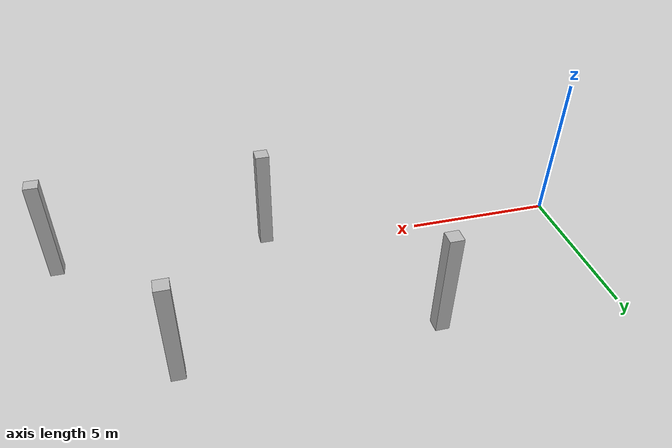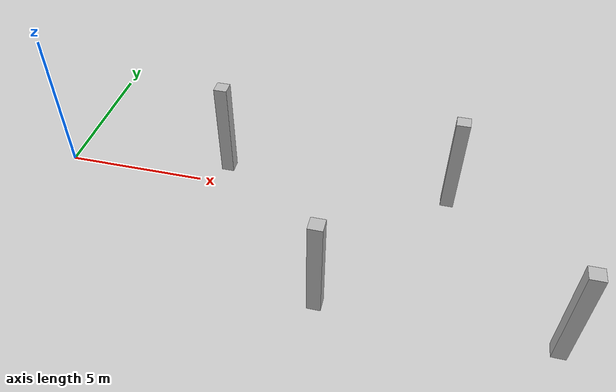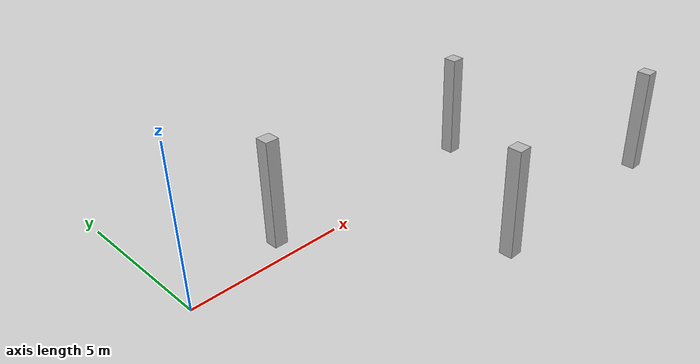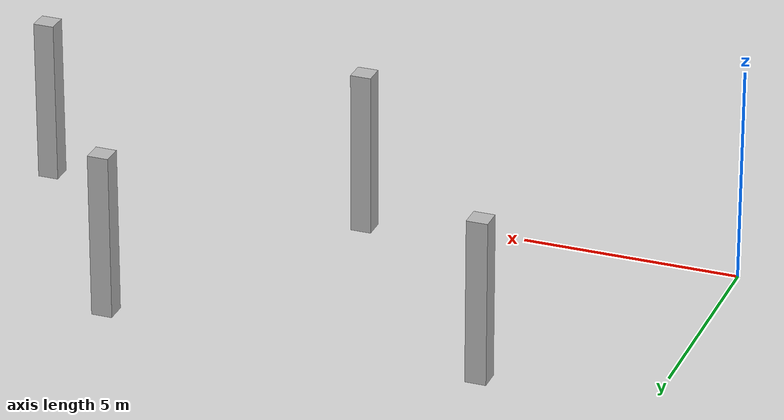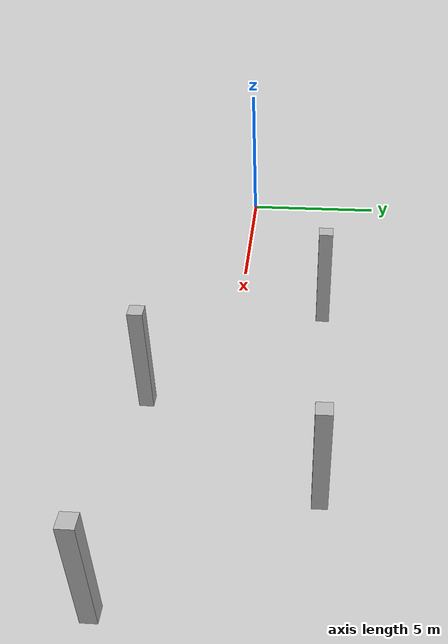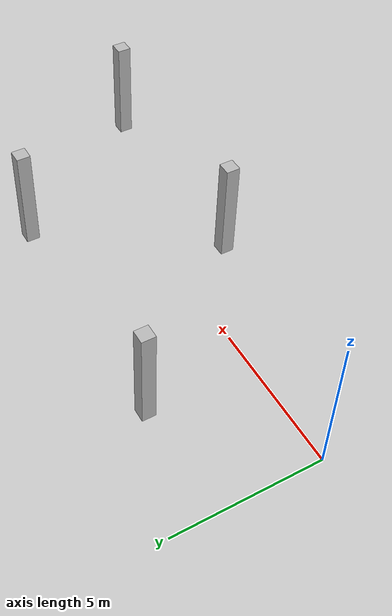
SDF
<?xml version="1.0" ?>
<sdf version="1.4">
  <world name="underwater">
    <include>
      <uri>model://sun</uri>
    </include>

    <wind>
      <linear_velocity>11 11 0</linear_velocity> <!-- Wind linear velocity -->
    </wind>
    <model name="model">
      <link name="link">
        <wind>true</wind>
      </link>
  </model>

    <model name='barco_obs2'>
        <static>true</static>
        <link name='base_link2'>
          <pose frame=''>5 3 0 0 0 0</pose>
          <inertial>
            <pose frame=''>0 0 0 0 0 0</pose>
            <mass>10</mass>
            <inertia>
              <ixx>3</ixx>
              <ixy>0</ixy>
              <ixz>0</ixz>
              <iyy>1</iyy>
              <iyz>0</iyz>
              <izz>3</izz>
            </inertia>
          </inertial>
          <collision name='base_link_collision2'>
            <pose frame=''>0 0 0 1.5708 0 1.5708</pose>
            <geometry>
              <box>
                <size>3 0.5 0.5</size>
              </box>
            </geometry>
          </collision>
          <visual name='base_link_visual2'>
            <pose frame=''>0 0 0 1.5708 1.5708 1.5708</pose>
            <geometry>
              <box>
                <size>4 0.5 0.5</size>
              </box>
            </geometry>
          </visual>
        </link>
    </model>

    <model name='barco_obs'>
        <static>true</static>
        <link name='base_link'>
          <pose frame=''>10 -3 0 0 0 0</pose>
          <inertial>
            <pose frame=''>0 0 0 0 0 0</pose>
            <mass>10</mass>
            <inertia>
              <ixx>3</ixx>
              <ixy>0</ixy>
              <ixz>0</ixz>
              <iyy>1</iyy>
              <iyz>0</iyz>
              <izz>3</izz>
            </inertia>
          </inertial>
          <collision name='base_link_collision'>
            <pose frame=''>0 0 0 1.5708 0 1.5708</pose>
            <geometry>
              <box>
                <size>3 0.5 0.5</size>
              </box>
            </geometry>
          </collision>
          <visual name='base_link_visual'>
            <pose frame=''>0 0 0 1.5708 1.5708 1.5708</pose>
            <geometry>
              <box>
                <size>4 0.5 0.5</size>
              </box>
            </geometry>
          </visual>
        </link>
    </model>

  <model name='barco_obs3'>
        <static>true</static>
        <link name='base_link3'>
          <pose frame=''>14 3 0 0 0 0</pose>
          <inertial>
            <pose frame=''>0 0 0 0 0 0</pose>
            <mass>10</mass>
            <inertia>
              <ixx>3</ixx>
              <ixy>0</ixy>
              <ixz>0</ixz>
              <iyy>1</iyy>
              <iyz>0</iyz>
              <izz>3</izz>
            </inertia>
          </inertial>
          <collision name='base_link_collision3'>
            <pose frame=''>0 0 0 1.5708 0 1.5708</pose>
            <geometry>
              <box>
                <size>3 0.5 0.5</size>
              </box>
            </geometry>
          </collision>
          <visual name='base_link_visual3'>
            <pose frame=''>0 0 0 1.5708 1.5708 1.5708</pose>
            <geometry>
              <box>
                <size>4 0.5 0.5</size>
              </box>
            </geometry>
          </visual>
        </link>
    </model>

    <model name='barco_obs4'>
        <static>true</static>
        <link name='base_link4'>
          <pose frame=''>18 -3 0 0 0 0</pose>
          <inertial>
            <pose frame=''>0 0 0 0 0 0</pose>
            <mass>10</mass>
            <inertia>
              <ixx>3</ixx>
              <ixy>0</ixy>
              <ixz>0</ixz>
              <iyy>1</iyy>
              <iyz>0</iyz>
              <izz>3</izz>
            </inertia>
          </inertial>
          <collision name='base_link_collision4'>
            <pose frame=''>0 0 0 1.5708 0 1.5708</pose>
            <geometry>
              <box>
                <size>3 0.5 0.5</size>
              </box>
            </geometry>
          </collision>
          <visual name='base_link_visual4'>
            <pose frame=''>0 0 0 1.5708 1.5708 1.5708</pose>
            <geometry>
              <box>
                <size>4 0.5 0.5</size>
              </box>
            </geometry>
          </visual>
        </link>
    </model>

    <!-- buoyancy plugin -->
    <plugin name="freefloating_gazebo_fluid" filename="libfreefloating_gazebo_fluid.so">
              <descriptionParam>robot_description</descriptionParam>
              <fluidTopic>current</fluidTopic>
              <alwaysOn>true</alwaysOn>
              <surface>0 0 0</surface>
              <updateRate>.001</updateRate>
    </plugin>
  </world>
</sdf>
